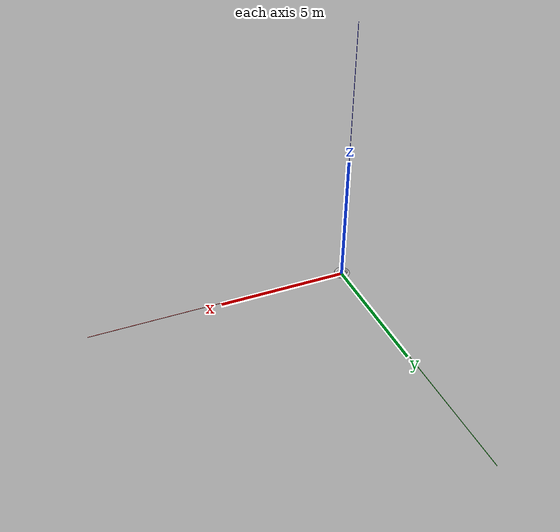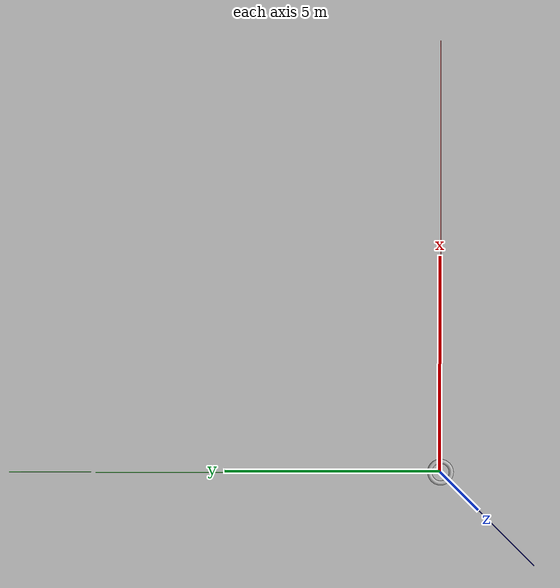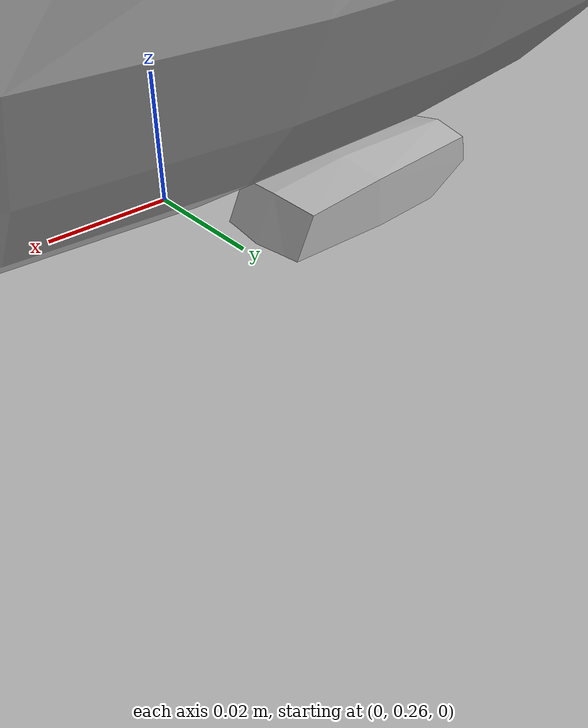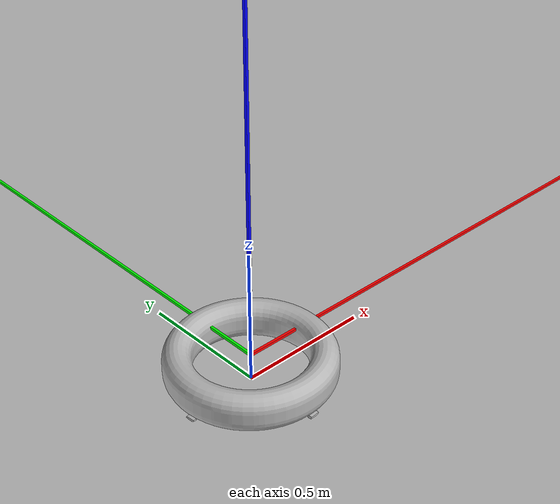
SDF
<?xml version="1.0" ?>
<sdf version="1.6">
  <world name="waves">
    <plugin filename="gz-sim-physics-system"
            name="gz::sim::systems::Physics">
    </plugin>
    <plugin filename="gz-sim-sensors-system"
            name="gz::sim::systems::Sensors">
      <render_engine>ogre2</render_engine>
      <background_color>0.8 0.8 0.8</background_color>
    </plugin>
    <plugin filename="gz-sim-scene-broadcaster-system"
            name="gz::sim::systems::SceneBroadcaster">
    </plugin>
    <plugin filename="gz-sim-user-commands-system"
            name="gz::sim::systems::UserCommands">
    </plugin>

    <plugin filename="gz-sim-imu-system"
            name="gz::sim::systems::Imu">
    </plugin>

    <scene>
      <ambient>1.0 1.0 1.0</ambient>
      <background>0.8 0.8 0.8</background>
      <sky></sky>
    </scene>

    <light type="directional" name="sun">
      <cast_shadows>true</cast_shadows>
      <pose>0 0 10 0 0 0</pose>
      <diffuse>0.8 0.8 0.8 1</diffuse>
      <specular>0.6 0.6 0.6 1</specular>
      <direction>-0.5 0.1 -0.9</direction>
    </light>

    <!-- Disable gravity if waves are not used -->

    <include>
      <pose>0 0 0 0 0 0</pose>
      <uri>model://waves</uri>
    </include>

    <!-- ENU axes -->
    <model name="axes">
      <static>1</static>
      <link name="link">
        <visual name="r">
          <cast_shadows>0</cast_shadows>
          <pose>5 0 0.1 0 0 0</pose>
          <geometry>
            <box>
              <size>10 0.01 0.01</size>
            </box>
          </geometry>
          <material>
            <ambient>1 0 0 1</ambient>
            <diffuse>1 0 0 1</diffuse>
            <emissive>1 0 0 1</emissive>
            <specular>0.5 0.5 0.5 1</specular>
          </material>
        </visual>
        <visual name="g">
          <cast_shadows>0</cast_shadows>
          <pose>0 5 0.1 0 0 0</pose>
          <geometry>
            <box>
              <size>0.01 10 0.01</size>
            </box>
          </geometry>
          <material>
            <ambient>0 1 0 1</ambient>
            <diffuse>0 1 0 1</diffuse>
            <emissive>0 1 0 1</emissive>
            <specular>0.5 0.5 0.5 1</specular>
          </material>
        </visual>
        <visual name="b">
          <cast_shadows>0</cast_shadows>
          <pose>0 0 5.1 0 0 0</pose>
          <geometry>
            <box>
              <size>0.01 0.01 10</size>
            </box>
          </geometry>
          <material>
            <ambient>0 0 1 1</ambient>
            <diffuse>0 0 1 1</diffuse>
            <emissive>0 0 1 1</emissive>
            <specular>0.5 0.5 0.5 1</specular>
          </material>
        </visual>
      </link>
    </model>

    <include>
      <pose>0 0 0 0 0 0</pose>
      <uri>model://wow_craft</uri>
    </include>

  </world>
</sdf>

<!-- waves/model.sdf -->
<sdf version="1.6">
  <model name="waves">
    <static>true</static>
    <link name="link">
      <visual name= "wave_visual">
        <geometry>
          <mesh>
            <uri>meshes/mesh.dae</uri>
          </mesh>
        </geometry>
        <plugin
            filename="libWaveVisual.so"
            name="ignition::gazebo::systems::WaveVisual">
          <shader>
            <vertex>materials/programs/GerstnerWaves_vs_330.glsl</vertex>
            <fragment>materials/programs/GerstnerWaves_fs_330.glsl</fragment>
          </shader>
          <wavefield>
            <size>1000 1000</size>
            <cell_count>50 50</cell_count>
            <wave>
              <model>PMS</model>
              <period>5</period>
              <number>3</number>
              <scale>5.1</scale>
              <gain>0.3</gain>
              <direction>1 0</direction>
              <angle>0.4</angle>
              <tau>2.0</tau>
              <amplitude>0.0</amplitude>
              <steepness>0.0</steepness>
            </wave>
          </wavefield>
        </plugin>
        <visibility_flags>8</visibility_flags>
      </visual>
    </link>
  </model>
</sdf>

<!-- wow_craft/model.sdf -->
<sdf version='1.7'>
  <model name='wow_craft'>
    <enable_wind>true</enable_wind>

    <link name="base_link">
      <visual name="visual">
        <geometry>
          <mesh>
            <uri>model://wow_craft/meshes/wow_craft3.stl</uri>
          </mesh>
        </geometry>
      </visual>
      <collision name="collision">
        <geometry>
          <mesh>
            <uri>model://wow_craft/meshes/100.stl</uri>
          </mesh>
        </geometry>
      </collision>
      <inertial>
        <pose>0 0 0 0 0 0</pose>
        <mass>10.0</mass>
        <inertia>
          <ixx>0.3</ixx>
          <ixy>0</ixy>
          <iyy>0.3</iyy>
          <iyz>0</iyz>
          <izz>0.6</izz>
        </inertia>
      </inertial>
    </link>

    <link name="thruster_1_link">
      <pose>0.28 0 -0.01 0 0 -1.570796</pose>
      <visual name="visual">
        <geometry>
          <mesh>
            <uri>model://wam-v/meshes/engine.dae</uri>
            <scale>0.1 0.1 0.1</scale>
          </mesh>
        </geometry>
      </visual>
      <collision name="engine_vertical_axis_collision">
        <pose>-0.016 0 -0.0215 0 0 0</pose>
        <geometry>
          <box>
            <size>0.01 0.01 0.083</size>
          </box>
        </geometry>
      </collision>
      <collision name="engine_rear_end_collision">
        <pose>-0.034 0 0.012 0 0 0</pose>
        <geometry>
          <box>
            <size>0.015 0.015 0.012</size>
          </box>
        </geometry>
      </collision>
      <inertial>
        <mass>0.1</mass>
        <inertia>
          <ixx>0.0001</ixx>
          <ixy>0</ixy>
          <iyy>0.0001</iyy>
          <iyz>0</iyz>
          <izz>0.0001</izz>
        </inertia>
      </inertial>
    </link>
    <joint name="thruster_1_joint" type="revolute">
      <parent>base_link</parent>
      <child>thruster_1_link</child>
      <axis>
        <xyz>0 0 1</xyz>
        <limit>
          <lower>0</lower>
          <upper>0</upper>
        </limit>
        <dynamics>
          <damping>0.05</damping>
        </dynamics>
      </axis>
    </joint>

    <link name="thruster_1_propeller_link">
      <pose relative_to="thruster_1_propeller_joint">0 0 0 0 0 0</pose>
      <visual name="visual">
        <geometry>
          <mesh>
            <uri>model://wam-v/meshes/propeller.dae</uri>
            <scale>0.1 0.1 0.1</scale>
          </mesh>
        </geometry>
      </visual>
      <collision name="collision">
        <pose>-0.011 0 0 0 1.570796 0</pose>
        <geometry>
          <cylinder>
            <length>0.01</length>
            <radius>0.03</radius>
          </cylinder>
        </geometry>
      </collision>
      <inertial>
        <mass>0.1</mass>
        <inertia>
          <ixx>0.0001</ixx>
          <ixy>0</ixy>
          <iyy>0.0001</iyy>
          <iyz>0</iyz>
          <izz>0.0001</izz>
        </inertia>
      </inertial>
    </link>
    <joint name="thruster_1_propeller_joint" type="revolute">
      <pose relative_to="thruster_1_link">-0.0278156 0 -0.0509371 0 0 0</pose>
      <parent>thruster_1_link</parent>
      <child>thruster_1_propeller_link</child>
      <axis>
        <xyz>1 0 0</xyz>
        <dynamics>
          <damping>0.01</damping>
        </dynamics>
        <limit>
          <lower>-1e+16</lower>
          <upper>1e+16</upper>
        </limit>
      </axis>
    </joint>

    <link name="thruster_2_link">
      <pose>0 0.28 -0.01 0 0 0</pose>
      <visual name="visual">
        <geometry>
          <mesh>
            <uri>model://wam-v/meshes/engine.dae</uri>
            <scale>0.1 0.1 0.1</scale>
          </mesh>
        </geometry>
      </visual>
      <collision name="engine_vertical_axis_collision">
        <pose>-0.016 0 -0.0215 0 0 0</pose>
        <geometry>
          <box>
            <size>0.01 0.01 0.083</size>
          </box>
        </geometry>
      </collision>
      <collision name="engine_rear_end_collision">
        <pose>-0.034 0 0.012 0 0 0</pose>
        <geometry>
          <box>
            <size>0.015 0.015 0.012</size>
          </box>
        </geometry>
      </collision>
      <inertial>
        <mass>0.1</mass>
        <inertia>
          <ixx>0.0001</ixx>
          <ixy>0</ixy>
          <iyy>0.0001</iyy>
          <iyz>0</iyz>
          <izz>0.0001</izz>
        </inertia>
      </inertial>
    </link>
    <joint name="thruster_2_joint" type="revolute">
      <parent>base_link</parent>
      <child>thruster_2_link</child>
      <axis>
        <xyz>0 0 1</xyz>
        <limit>
          <lower>0</lower>
          <upper>0</upper>
        </limit>
        <dynamics>
          <damping>0.05</damping>
        </dynamics>
      </axis>
    </joint>

    <link name="thruster_2_propeller_link">
      <pose relative_to="thruster_2_propeller_joint">0 0 0 0 0 0</pose>
      <visual name="visual">
        <geometry>
          <mesh>
            <uri>model://wam-v/meshes/propeller.dae</uri>
            <scale>0.1 0.1 0.1</scale>
          </mesh>
        </geometry>
      </visual>
      <collision name="collision">
        <pose>-0.011 0 0 0 1.570796 0</pose>
        <geometry>
          <cylinder>
            <length>0.01</length>
            <radius>0.03</radius>
          </cylinder>
        </geometry>
      </collision>
      <inertial>
        <mass>0.1</mass>
        <inertia>
          <ixx>0.0001</ixx>
          <ixy>0</ixy>
          <iyy>0.0001</iyy>
          <iyz>0</iyz>
          <izz>0.0001</izz>
        </inertia>
      </inertial>
    </link>
    <joint name="thruster_2_propeller_joint" type="revolute">
      <pose relative_to="thruster_2_link">-0.0278156 0 -0.0509371 0 0 0</pose>
      <parent>thruster_2_link</parent>
      <child>thruster_2_propeller_link</child>
      <axis>
        <xyz>1 0 0</xyz>
        <dynamics>
          <damping>0.01</damping>
        </dynamics>
        <limit>
          <lower>-1e+16</lower>
          <upper>1e+16</upper>
        </limit>
      </axis>
    </joint>

    <link name="thruster_3_link">
      <pose>-0.28 0 -0.01 0 0 1.570796</pose>
      <visual name="visual">
        <geometry>
          <mesh>
            <uri>model://wam-v/meshes/engine.dae</uri>
            <scale>0.1 0.1 0.1</scale>
          </mesh>
        </geometry>
      </visual>
      <collision name="engine_vertical_axis_collision">
        <pose>-0.016 0 -0.0215 0 0 0</pose>
        <geometry>
          <box>
            <size>0.01 0.01 0.083</size>
          </box>
        </geometry>
      </collision>
      <collision name="engine_rear_end_collision">
        <pose>-0.034 0 0.012 0 0 0</pose>
        <geometry>
          <box>
            <size>0.015 0.015 0.012</size>
          </box>
        </geometry>
      </collision>
      <inertial>
        <mass>0.1</mass>
        <inertia>
          <ixx>0.0001</ixx>
          <ixy>0</ixy>
          <iyy>0.0001</iyy>
          <iyz>0</iyz>
          <izz>0.0001</izz>
        </inertia>
      </inertial>
    </link>
    <joint name="thruster_3_joint" type="revolute">
      <parent>base_link</parent>
      <child>thruster_3_link</child>
      <axis>
        <xyz>0 0 1</xyz>
        <limit>
          <lower>0</lower>
          <upper>0</upper>
        </limit>
        <dynamics>
          <damping>0.05</damping>
        </dynamics>
      </axis>
    </joint>

    <link name="thruster_3_propeller_link">
      <pose relative_to="thruster_3_propeller_joint">0 0 0 0 0 0</pose>
      <visual name="visual">
        <geometry>
          <mesh>
            <uri>model://wam-v/meshes/propeller.dae</uri>
            <scale>0.1 0.1 0.1</scale>
          </mesh>
        </geometry>
      </visual>
      <collision name="collision">
        <pose>-0.011 0 0 0 1.570796 0</pose>
        <geometry>
          <cylinder>
            <length>0.01</length>
            <radius>0.03</radius>
          </cylinder>
        </geometry>
      </collision>
      <inertial>
        <mass>0.1</mass>
        <inertia>
          <ixx>0.0001</ixx>
          <ixy>0</ixy>
          <iyy>0.0001</iyy>
          <iyz>0</iyz>
          <izz>0.0001</izz>
        </inertia>
      </inertial>
    </link>
    <joint name="thruster_3_propeller_joint" type="revolute">
      <pose relative_to="thruster_3_link">-0.0278156 0 -0.0509371 0 0 0</pose>
      <parent>thruster_3_link</parent>
      <child>thruster_3_propeller_link</child>
      <axis>
        <xyz>1 0 0</xyz>
        <dynamics>
          <damping>0.01</damping>
        </dynamics>
        <limit>
          <lower>-1e+16</lower>
          <upper>1e+16</upper>
        </limit>
      </axis>
    </joint>

    <link name="thruster_4_link">
      <pose>0 -0.28 -0.01 0 0 3.141592</pose>
      <visual name="visual">
        <geometry>
          <mesh>
            <uri>model://wam-v/meshes/engine.dae</uri>
            <scale>0.1 0.1 0.1</scale>
          </mesh>
        </geometry>
      </visual>
      <collision name="engine_vertical_axis_collision">
        <pose>-0.016 0 -0.0215 0 0 0</pose>
        <geometry>
          <box>
            <size>0.01 0.01 0.083</size>
          </box>
        </geometry>
      </collision>
      <collision name="engine_rear_end_collision">
        <pose>-0.034 0 0.012 0 0 0</pose>
        <geometry>
          <box>
            <size>0.015 0.015 0.012</size>
          </box>
        </geometry>
      </collision>
      <inertial>
        <mass>0.1</mass>
        <inertia>
          <ixx>0.0001</ixx>
          <ixy>0</ixy>
          <iyy>0.0001</iyy>
          <iyz>0</iyz>
          <izz>0.0001</izz>
        </inertia>
      </inertial>
    </link>
    <joint name="thruster_4_joint" type="revolute">
      <parent>base_link</parent>
      <child>thruster_4_link</child>
      <axis>
        <xyz>0 0 1</xyz>
        <limit>
          <lower>0</lower>
          <upper>0</upper>
        </limit>
        <dynamics>
          <damping>0.05</damping>
        </dynamics>
      </axis>
    </joint>

    <link name="thruster_4_propeller_link">
      <pose relative_to="thruster_4_propeller_joint">0 0 0 0 0 0</pose>
      <visual name="visual">
        <geometry>
          <mesh>
            <uri>model://wam-v/meshes/propeller.dae</uri>
            <scale>0.1 0.1 0.1</scale>
          </mesh>
        </geometry>
      </visual>
      <collision name="collision">
        <pose>-0.011 0 0 0 1.570796 0</pose>
        <geometry>
          <cylinder>
            <length>0.01</length>
            <radius>0.03</radius>
          </cylinder>
        </geometry>
      </collision>
      <inertial>
        <mass>0.1</mass>
        <inertia>
          <ixx>0.0001</ixx>
          <ixy>0</ixy>
          <iyy>0.0001</iyy>
          <iyz>0</iyz>
          <izz>0.0001</izz>
        </inertia>
      </inertial>
    </link>
    <joint name="thruster_4_propeller_joint" type="revolute">
      <pose relative_to="thruster_4_link">-0.0278156 0 -0.0509371 0 0 0</pose>
      <parent>thruster_4_link</parent>
      <child>thruster_4_propeller_link</child>
      <axis>
        <xyz>1 0 0</xyz>
        <dynamics>
          <damping>0.01</damping>
        </dynamics>
        <limit>
          <lower>-1e+16</lower>
          <upper>1e+16</upper>
        </limit>
      </axis>
    </joint>

    <!-- Sensors -->
    <link name="imu_link">
      <inertial>
        <pose>0 0 0 0 0 0</pose>
        <mass>0.15</mass>
        <inertia>
          <ixx>0.00001</ixx>
          <ixy>0</ixy>
          <ixz>0</ixz>
          <iyy>0.00002</iyy>
          <iyz>0</iyz>
          <izz>0.00002</izz>
        </inertia>
      </inertial>
      <sensor name="imu_sensor" type="imu">
        <pose>0 0 0 0 0 0</pose>
        <always_on>1</always_on>
        <update_rate>1000.0</update_rate>
      </sensor>
    </link>
    <joint name="imu_joint" type="revolute">
      <child>imu_link</child>
      <parent>base_link</parent>
      <axis>
        <xyz>0 0 1</xyz>
        <limit>
          <lower>0</lower>
          <upper>0</upper>
          <effort>0</effort>
          <velocity>0</velocity>
        </limit>
        <dynamics>
          <damping>1.0</damping>
        </dynamics>
      </axis>
    </joint>

    <!-- Joint state and force plugins -->
    <plugin filename="gz-sim-joint-state-publisher-system"
      name="gz::sim::systems::JointStatePublisher">
    </plugin>
    <plugin filename="gz-sim-apply-joint-force-system"
      name="gz::sim::systems::ApplyJointForce">
      <joint_name>thruster_1_joint</joint_name>
    </plugin>
    <plugin filename="gz-sim-apply-joint-force-system"
      name="gz::sim::systems::ApplyJointForce">
      <joint_name>thruster_2_joint</joint_name>
    </plugin>
    <plugin filename="gz-sim-apply-joint-force-system"
      name="gz::sim::systems::ApplyJointForce">
      <joint_name>thruster_3_joint</joint_name>
    </plugin>
    <plugin filename="gz-sim-apply-joint-force-system"
      name="gz::sim::systems::ApplyJointForce">
      <joint_name>thruster_4_joint</joint_name>
    </plugin>

    <!-- Thruster plugins -->
    <plugin
        filename="gz-sim-thruster-system"
        name="gz::sim::systems::Thruster">
      <namespace>wow_craft</namespace>
      <joint_name>thruster_1_propeller_joint</joint_name>
      <use_angvel_cmd>0</use_angvel_cmd>
      <fluid_density>1000</fluid_density>
      <propeller_diameter>0.06</propeller_diameter>
      <thrust_coefficient>0.01</thrust_coefficient>
      <velocity_control>1</velocity_control>
      <max_thrust_cmd>200.0</max_thrust_cmd>
      <min_thrust_cmd>-200.0</min_thrust_cmd>
    </plugin>

    <plugin
        filename="gz-sim-thruster-system"
        name="gz::sim::systems::Thruster">
      <namespace>wow_craft</namespace>
      <joint_name>thruster_2_propeller_joint</joint_name>
      <use_angvel_cmd>0</use_angvel_cmd>
      <fluid_density>1000</fluid_density>
      <propeller_diameter>0.06</propeller_diameter>
      <thrust_coefficient>0.01</thrust_coefficient>
      <velocity_control>1</velocity_control>
      <max_thrust_cmd>200.0</max_thrust_cmd>
      <min_thrust_cmd>-200.0</min_thrust_cmd>
    </plugin>

    <plugin
        filename="gz-sim-thruster-system"
        name="gz::sim::systems::Thruster">
      <namespace>wow_craft</namespace>
      <joint_name>thruster_3_propeller_joint</joint_name>
      <use_angvel_cmd>0</use_angvel_cmd>
      <fluid_density>1000</fluid_density>
      <propeller_diameter>0.06</propeller_diameter>
      <thrust_coefficient>0.01</thrust_coefficient>
      <velocity_control>1</velocity_control>
      <max_thrust_cmd>200.0</max_thrust_cmd>
      <min_thrust_cmd>-200.0</min_thrust_cmd>
    </plugin>

    <plugin
        filename="gz-sim-thruster-system"
        name="gz::sim::systems::Thruster">
      <namespace>wow_craft</namespace>
      <joint_name>thruster_4_propeller_joint</joint_name>
      <use_angvel_cmd>0</use_angvel_cmd>
      <fluid_density>1000</fluid_density>
      <propeller_diameter>0.06</propeller_diameter>
      <thrust_coefficient>0.01</thrust_coefficient>
      <velocity_control>1</velocity_control>
      <max_thrust_cmd>200.0</max_thrust_cmd>
      <min_thrust_cmd>-200.0</min_thrust_cmd>
    </plugin>

    <!-- Hydrodynamics plugin -->
    <plugin
        filename="gz-waves1-hydrodynamics-system"
        name="gz::sim::systems::Hydrodynamics">
        <enable>wow_craft</enable>

        <hydrodynamics>
          <damping_on>1</damping_on>
          <viscous_drag_on>1</viscous_drag_on>
          <pressure_drag_on>1</pressure_drag_on>

          <!-- Linear and Angular Damping -->
          <cDampL1>1.0E-6</cDampL1>
          <cDampL2>1.0E-6</cDampL2>
          <cDampR1>1.0E-6</cDampR1>
          <cDampR2>1.0E-6</cDampR2>

          <!-- 'Pressure' Drag -->
          <cPDrag1>50</cPDrag1>
          <cPDrag2>50</cPDrag2>
          <fPDrag>1.0</fPDrag>
          <cSDrag1>50</cSDrag1>
          <cSDrag2>50</cSDrag2>
          <fSDrag>0.4</fSDrag>
          <vRDrag>1.0</vRDrag>
        </hydrodynamics>
    </plugin>

    <!-- ArduPilot plugin -->
    <plugin name="ArduPilotPlugin" filename="ArduPilotPlugin">
      <fdm_addr>127.0.0.1</fdm_addr>
      <fdm_port_in>9002</fdm_port_in>
      <connectionTimeoutMaxCount>5</connectionTimeoutMaxCount>
      <lock_step>1</lock_step>
      <modelXYZToAirplaneXForwardZDown>0 0 0 3.141593 0 0</modelXYZToAirplaneXForwardZDown>
      <gazeboXYZToNED>0 0 0 3.141593 0 1.57079632</gazeboXYZToNED>
      <imuName>imu_sensor</imuName>

      <!--
        SERVO1_FUNCTION 26 (GroundSteering)
      -->
      <control channel="0">
        <jointName>thruster_1_joint</jointName>
        <useForce>1</useForce>
        <multiplier>3.1415926</multiplier>
        <offset>-0.5</offset>
        <servo_min>1000</servo_min>
        <servo_max>2000</servo_max>
        <type>POSITION</type>
        <p_gain>500.0</p_gain>
        <i_gain>0</i_gain>
        <d_gain>10</d_gain>
        <i_max>-1</i_max>
        <i_min>0</i_min>
        <cmd_max>5000.0</cmd_max>
        <cmd_min>-5000.0</cmd_min>
      </control>

      <control channel="0">
        <jointName>thruster_2_joint</jointName>
        <useForce>1</useForce>
        <multiplier>3.1415926</multiplier>
        <offset>-0.5</offset>
        <servo_min>1000</servo_min>
        <servo_max>2000</servo_max>
        <type>POSITION</type>
        <p_gain>500.0</p_gain>
        <i_gain>0</i_gain>
        <d_gain>10</d_gain>
        <i_max>-1</i_max>
        <i_min>0</i_min>
        <cmd_max>5000.0</cmd_max>
        <cmd_min>-5000.0</cmd_min>
      </control>

      <control channel="0">
        <jointName>thruster_3_joint</jointName>
        <useForce>1</useForce>
        <multiplier>3.1415926</multiplier>
        <offset>-0.5</offset>
        <servo_min>1000</servo_min>
        <servo_max>2000</servo_max>
        <type>POSITION</type>
        <p_gain>500.0</p_gain>
        <i_gain>0</i_gain>
        <d_gain>10</d_gain>
        <i_max>-1</i_max>
        <i_min>0</i_min>
        <cmd_max>5000.0</cmd_max>
        <cmd_min>-5000.0</cmd_min>
      </control>

      <control channel="0">
        <jointName>thruster_4_joint</jointName>
        <useForce>1</useForce>
        <multiplier>3.1415926</multiplier>
        <offset>-0.5</offset>
        <servo_min>1000</servo_min>
        <servo_max>2000</servo_max>
        <type>POSITION</type>
        <p_gain>500.0</p_gain>
        <i_gain>0</i_gain>
        <d_gain>10</d_gain>
        <i_max>-1</i_max>
        <i_min>0</i_min>
        <cmd_max>5000.0</cmd_max>
        <cmd_min>-5000.0</cmd_min>
      </control>

      <control channel="2">
        <jointName>thruster_1_propeller_joint</jointName>
        <useForce>1</useForce>
        <multiplier>3000</multiplier>
        <offset>-0.5</offset>
        <servo_min>1000</servo_min>
        <servo_max>2000</servo_max>
        <type>COMMAND</type>
        <cmd_topic>/model/wow_craft/joint/thruster_1_propeller_joint/cmd_thrust</cmd_topic>
      </control>

      <control channel="2">
        <jointName>thruster_2_propeller_joint</jointName>
        <useForce>1</useForce>
        <multiplier>3000</multiplier>
        <offset>-0.5</offset>
        <servo_min>1000</servo_min>
        <servo_max>2000</servo_max>
        <type>COMMAND</type>
        <cmd_topic>/model/wow_craft/joint/thruster_2_propeller_joint/cmd_thrust</cmd_topic>
      </control>

      <control channel="2">
        <jointName>thruster_3_propeller_joint</jointName>
        <useForce>1</useForce>
        <multiplier>3000</multiplier>
        <offset>-0.5</offset>
        <servo_min>1000</servo_min>
        <servo_max>2000</servo_max>
        <type>COMMAND</type>
        <cmd_topic>/model/wow_craft/joint/thruster_3_propeller_joint/cmd_thrust</cmd_topic>
      </control>

      <control channel="2">
        <jointName>thruster_4_propeller_joint</jointName>
        <useForce>1</useForce>
        <multiplier>3000</multiplier>
        <offset>-0.5</offset>
        <servo_min>1000</servo_min>
        <servo_max>2000</servo_max>
        <type>COMMAND</type>
        <cmd_topic>/model/wow_craft/joint/thruster_4_propeller_joint/cmd_thrust</cmd_topic>
      </control>
    </plugin>
  </model>
</sdf>
